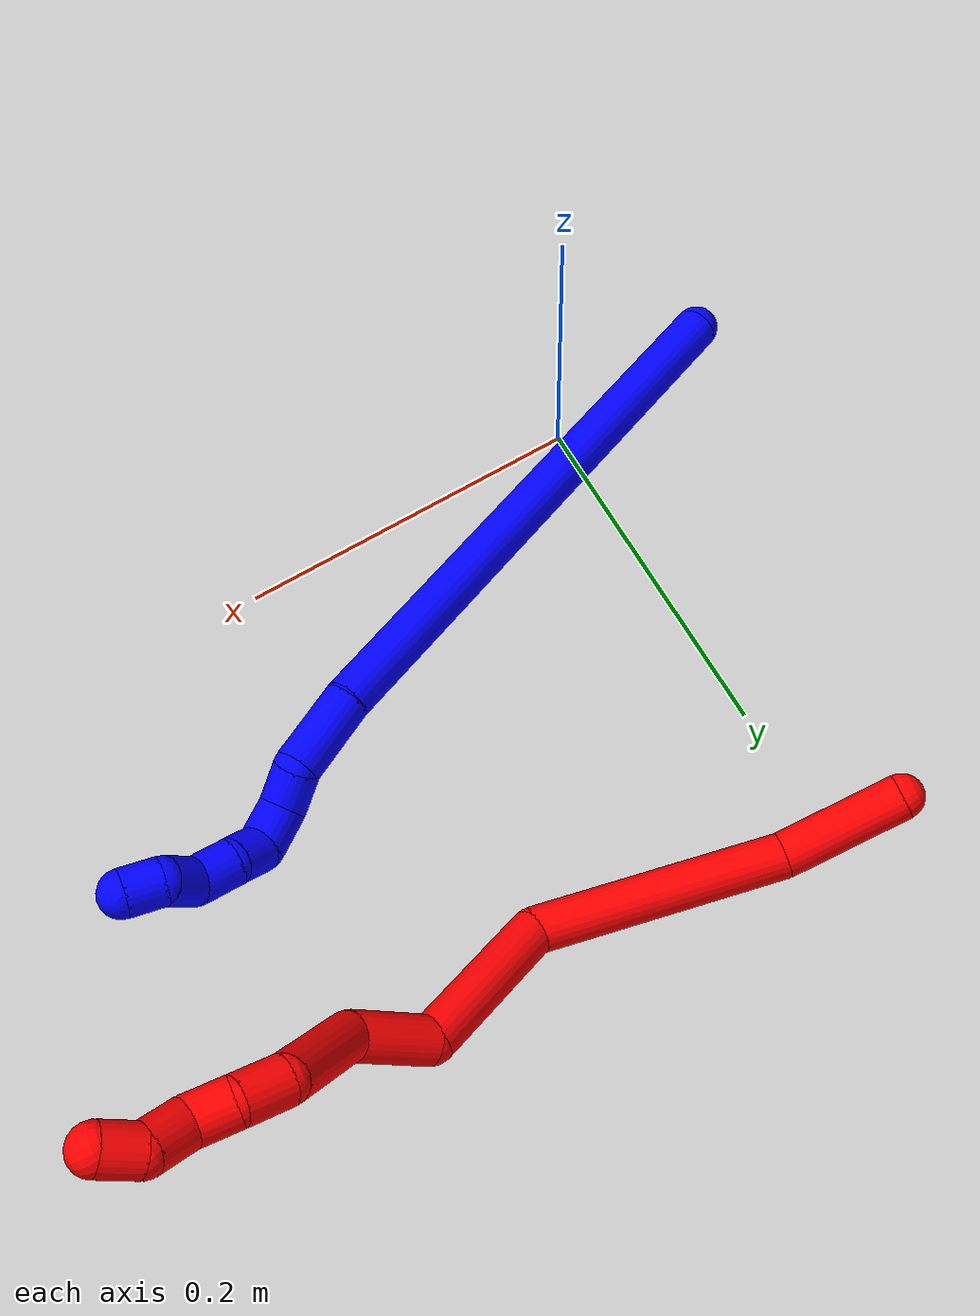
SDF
<sdf version="1.7">
 <world name="default">
  <plugin name="TubeGeneratorPlugin" filename="libtube_generator_plugin.so"/>
  <model name="photoneo_s_sensor">
   <static>1</static>
   <pose>0 0 2 1.57079 1.57079 3.14159</pose>
   <link name="link">
    <inertial><mass>0.1</mass></inertial>
    <sensor name="sensor" type="depth">
     <update_rate>30</update_rate>
     <camera>
      <horizontal_fov>1.22</horizontal_fov>
      <image><width>1920</width><height>1200</height><format>B8G8R8</format></image>
      <clip><near>0.1</near><far>4</far></clip>
      <depth_camera><output>points</output></depth_camera>
     </camera>
     <plugin name="camera_plugin" filename="libgazebo_ros_depth_camera.so">
      <baseline>0.2</baseline>
      <alwaysOn>1</alwaysOn>
      <updateRate>0.0</updateRate>
      <cameraName>camera_ir</cameraName>
      <imageTopicName>/camera/color/image_raw</imageTopicName>
      <cameraInfoTopicName>/camera/color/camera_info</cameraInfoTopicName>
      <depthImageTopicName>/camera/depth/image_raw</depthImageTopicName>
      <depthImageCameraInfoTopicName>/camera/depth/camera_info</depthImageCameraInfoTopicName>
      <pointCloudTopicName>/camera/depth/points</pointCloudTopicName>
      <frameName>fr_optical</frameName>
      <pointCloudCutoff>0.1</pointCloudCutoff>
      <pointCloudCutoffMax>2.0</pointCloudCutoffMax>
      <distortionK1>0</distortionK1>
      <distortionK2>0</distortionK2>
      <distortionK3>0</distortionK3>
      <distortionT1>0</distortionT1>
      <distortionT2>0</distortionT2>
      <CxPrime>0</CxPrime>
      <Cx>0</Cx>
      <Cy>0</Cy>
      <focalLength>0</focalLength>
      <hackBaseline>0</hackBaseline>
     </plugin>
    </sensor>
   </link>
  </model>
  <gravity>0 0 -9.8</gravity>
  <magnetic_field>6e-06 2.3e-05 -4.2e-05</magnetic_field>
  <atmosphere type="adiabatic"/>
  <physics name="default_physics" default="0" type="ode">
   <max_step_size>0.003</max_step_size>
   <real_time_factor>1</real_time_factor>
   <real_time_update_rate>1000</real_time_update_rate>
   <max_contacts>10000</max_contacts>
   <ode>
    <solver>
     <type>quick</type>
     <iters>100</iters>
     <sor>1.3</sor>
     <use_dynamic_moi_rescaling>0</use_dynamic_moi_rescaling>
    </solver>
    <constraints>
     <contact_max_correcting_vel>0</contact_max_correcting_vel>
     <contact_surface_layer>0.001</contact_surface_layer>
     <cfm>0</cfm>
     <erp>0.2</erp>
    </constraints>
   </ode>
  </physics>
  <scene><ambient>0.4 0.4 0.4 1</ambient><background>0.7 0.7 0.7 1</background><shadows>0</shadows></scene>
  <audio><device>default</device></audio>
  <spherical_coordinates>
   <surface_model>EARTH_WGS84</surface_model>
   <latitude_deg>0</latitude_deg>
   <longitude_deg>0</longitude_deg>
   <elevation>0</elevation>
   <heading_deg>0</heading_deg>
  </spherical_coordinates>
  <model name="bin">
   <static>1</static>
   <link name="bottom">
    <collision name="collision-bottom">
     <pose>0 0 -0.01 0 -0 0</pose>
     <geometry><box><size>0.8 0.6 0.02</size></box></geometry>
     <surface>
      <friction><ode><mu>100</mu><mu2>100</mu2></ode></friction>
      <contact><collide_bitmask>65535</collide_bitmask></contact>
     </surface>
    </collision>
   </link>
   <link name="west_wall">
    <collision name="collision-west_wall">
     <pose>-0.41 0 0.1 0 -0 0</pose>
     <geometry><box><size>0.02 0.6 0.2</size></box></geometry>
     <surface>
      <friction><ode><mu>100</mu><mu2>100</mu2></ode></friction>
      <contact><collide_bitmask>65535</collide_bitmask></contact>
     </surface>
    </collision>
   </link>
   <link name="east_wall">
    <collision name="collision-east_wall">
     <pose>0.41 0 0.1 0 -0 0</pose>
     <geometry><box><size>0.02 0.6 0.2</size></box></geometry>
     <surface>
      <friction><ode><mu>100</mu><mu2>100</mu2></ode></friction>
      <contact><collide_bitmask>65535</collide_bitmask></contact>
     </surface>
    </collision>
   </link>
   <link name="south_wall">
    <collision name="collision-south_wall">
     <pose>0 -0.31 0.1 0 -0 0</pose>
     <geometry><box><size>0.8 0.02 0.2</size></box></geometry>
     <surface>
      <friction><ode><mu>100</mu><mu2>100</mu2></ode></friction>
      <contact><collide_bitmask>65535</collide_bitmask></contact>
     </surface>
    </collision>
   </link>
   <link name="north_wall">
    <collision name="collision-north_wall">
     <pose>0 0.31 0.1 0 -0 0</pose>
     <geometry><box><size>0.8 0.02 0.2</size></box></geometry>
     <surface>
      <friction><ode><mu>100</mu><mu2>100</mu2></ode></friction>
      <contact><collide_bitmask>65535</collide_bitmask></contact>
     </surface>
    </collision>
   </link>
  </model>
  <model name="1">
   <static>0</static>
   <link name="1">
    <collision name="collision-cylinder-e_1_1_4">
     <pose>0.144509 -0.029871 0.067407 0.417136 1.09902 0.2578</pose>
     <geometry><cylinder><radius>0.0125</radius><length>0.324461</length></cylinder></geometry>
     <surface>
      <friction><ode><mu>1.16</mu><mu2>1.16</mu2><slip1>0</slip1><slip2>0</slip2></ode></friction>
      <contact><ode><kp>1e+06</kp><kd>1</kd><max_vel>0</max_vel><min_depth>0.001</min_depth></ode></contact>
     </surface>
    </collision>
    <visual name="visual-cylinder-e_1_1_4">
     <pose>0.144509 -0.029871 0.067407 0.417136 1.09902 0.2578</pose>
     <geometry><cylinder><radius>0.0125</radius><length>0.324461</length></cylinder></geometry>
     <material><ambient>0 0 1 1</ambient></material>
    </visual>
    <collision name="collision-cylinder-e_2_4_5">
     <pose>0.309557 -0.060952 0.143253 0.14251 1.17732 0.095231</pose>
     <geometry><cylinder><radius>0.0125</radius><length>0.044476</length></cylinder></geometry>
     <surface>
      <friction><ode><mu>1.16</mu><mu2>1.16</mu2><slip1>0</slip1><slip2>0</slip2></ode></friction>
      <contact><ode><kp>1e+06</kp><kd>1</kd><max_vel>0</max_vel><min_depth>0.001</min_depth></ode></contact>
     </surface>
    </collision>
    <visual name="visual-cylinder-e_2_4_5">
     <pose>0.309557 -0.060952 0.143253 0.14251 1.17732 0.095231</pose>
     <geometry><cylinder><radius>0.0125</radius><length>0.044476</length></cylinder></geometry>
     <material><ambient>0 0 1 1</ambient></material>
    </visual>
    <collision name="collision-cylinder-e_3_5_6">
     <pose>0.340567 -0.057662 0.151127 -1.69583 1.16195 -1.27963</pose>
     <geometry><cylinder><radius>0.0125</radius><length>0.022825</length></cylinder></geometry>
     <surface>
      <friction><ode><mu>1.16</mu><mu2>1.16</mu2><slip1>0</slip1><slip2>0</slip2></ode></friction>
      <contact><ode><kp>1e+06</kp><kd>1</kd><max_vel>0</max_vel><min_depth>0.001</min_depth></ode></contact>
     </surface>
    </collision>
    <visual name="visual-cylinder-e_3_5_6">
     <pose>0.340567 -0.057662 0.151127 -1.69583 1.16195 -1.27963</pose>
     <geometry><cylinder><radius>0.0125</radius><length>0.022825</length></cylinder></geometry>
     <material><ambient>0 0 1 1</ambient></material>
    </visual>
    <collision name="collision-cylinder-e_4_6_7">
     <pose>0.361455 -0.052858 0.156928 -0.047348 1.02163 -0.026539</pose>
     <geometry><cylinder><radius>0.0125</radius><length>0.024423</length></cylinder></geometry>
     <surface>
      <friction><ode><mu>1.16</mu><mu2>1.16</mu2><slip1>0</slip1><slip2>0</slip2></ode></friction>
      <contact><ode><kp>1e+06</kp><kd>1</kd><max_vel>0</max_vel><min_depth>0.001</min_depth></ode></contact>
     </surface>
    </collision>
    <visual name="visual-cylinder-e_4_6_7">
     <pose>0.361455 -0.052858 0.156928 -0.047348 1.02163 -0.026539</pose>
     <geometry><cylinder><radius>0.0125</radius><length>0.024423</length></cylinder></geometry>
     <material><ambient>0 0 1 1</ambient></material>
    </visual>
    <collision name="collision-cylinder-e_5_7_8">
     <pose>0.377578 -0.058144 0.169562 0.728151 0.596938 0.23341</pose>
     <geometry><cylinder><radius>0.0125</radius><length>0.020304</length></cylinder></geometry>
     <surface>
      <friction><ode><mu>1.16</mu><mu2>1.16</mu2><slip1>0</slip1><slip2>0</slip2></ode></friction>
      <contact><ode><kp>1e+06</kp><kd>1</kd><max_vel>0</max_vel><min_depth>0.001</min_depth></ode></contact>
     </surface>
    </collision>
    <visual name="visual-cylinder-e_5_7_8">
     <pose>0.377578 -0.058144 0.169562 0.728151 0.596938 0.23341</pose>
     <geometry><cylinder><radius>0.0125</radius><length>0.020304</length></cylinder></geometry>
     <material><ambient>0 0 1 1</ambient></material>
    </visual>
    <collision name="collision-cylinder-e_6_8_9">
     <pose>0.392157 -0.06921 0.179567 0.97196 0.928936 0.517456</pose>
     <geometry><cylinder><radius>0.0125</radius><length>0.022153</length></cylinder></geometry>
     <surface>
      <friction><ode><mu>1.16</mu><mu2>1.16</mu2><slip1>0</slip1><slip2>0</slip2></ode></friction>
      <contact><ode><kp>1e+06</kp><kd>1</kd><max_vel>0</max_vel><min_depth>0.001</min_depth></ode></contact>
     </surface>
    </collision>
    <visual name="visual-cylinder-e_6_8_9">
     <pose>0.392157 -0.06921 0.179567 0.97196 0.928936 0.517456</pose>
     <geometry><cylinder><radius>0.0125</radius><length>0.022153</length></cylinder></geometry>
     <material><ambient>0 0 1 1</ambient></material>
    </visual>
    <collision name="collision-cylinder-e_7_9_10">
     <pose>0.404 -0.083112 0.189039 0.973197 0.283712 0.150819</pose>
     <geometry><cylinder><radius>0.0125</radius><length>0.02123</length></cylinder></geometry>
     <surface>
      <friction><ode><mu>1.16</mu><mu2>1.16</mu2><slip1>0</slip1><slip2>0</slip2></ode></friction>
      <contact><ode><kp>1e+06</kp><kd>1</kd><max_vel>0</max_vel><min_depth>0.001</min_depth></ode></contact>
     </surface>
    </collision>
    <visual name="visual-cylinder-e_7_9_10">
     <pose>0.404 -0.083112 0.189039 0.973197 0.283712 0.150819</pose>
     <geometry><cylinder><radius>0.0125</radius><length>0.02123</length></cylinder></geometry>
     <material><ambient>0 0 1 1</ambient></material>
    </visual>
    <collision name="collision-cylinder-e_8_10_2">
     <pose>0.414931 -0.097599 0.195852 1.39471 0.91226 0.779982</pose>
     <geometry><cylinder><radius>0.0125</radius><length>0.020127</length></cylinder></geometry>
     <surface>
      <friction><ode><mu>1.16</mu><mu2>1.16</mu2><slip1>0</slip1><slip2>0</slip2></ode></friction>
      <contact><ode><kp>1e+06</kp><kd>1</kd><max_vel>0</max_vel><min_depth>0.001</min_depth></ode></contact>
     </surface>
    </collision>
    <visual name="visual-cylinder-e_8_10_2">
     <pose>0.414931 -0.097599 0.195852 1.39471 0.91226 0.779982</pose>
     <geometry><cylinder><radius>0.0125</radius><length>0.020127</length></cylinder></geometry>
     <material><ambient>0 0 1 1</ambient></material>
    </visual>
    <collision name="collision-sphere-2">
     <pose>0.42289 -0.103663 0.196931 0 -0 0</pose>
     <geometry><sphere><radius>0.0125</radius></sphere></geometry>
     <surface>
      <friction><ode><mu>1.16</mu><mu2>1.16</mu2><slip1>0</slip1><slip2>0</slip2></ode></friction>
      <contact><ode><kp>1e+06</kp><kd>1</kd><max_vel>0</max_vel><min_depth>0.001</min_depth></ode></contact>
     </surface>
    </collision>
    <visual name="visual-sphere-2">
     <pose>0.42289 -0.103663 0.196931 0 -0 0</pose>
     <geometry><sphere><radius>0.0125</radius></sphere></geometry>
     <material><ambient>0 0 1 1</ambient></material>
    </visual>
    <collision name="collision-sphere-10">
     <pose>0.406971 -0.091536 0.194773 0 -0 0</pose>
     <geometry><sphere><radius>0.0125</radius></sphere></geometry>
     <surface>
      <friction><ode><mu>1.16</mu><mu2>1.16</mu2><slip1>0</slip1><slip2>0</slip2></ode></friction>
      <contact><ode><kp>1e+06</kp><kd>1</kd><max_vel>0</max_vel><min_depth>0.001</min_depth></ode></contact>
     </surface>
    </collision>
    <visual name="visual-sphere-10">
     <pose>0.406971 -0.091536 0.194773 0 -0 0</pose>
     <geometry><sphere><radius>0.0125</radius></sphere></geometry>
     <material><ambient>0 0 1 1</ambient></material>
    </visual>
    <collision name="collision-sphere-9">
     <pose>0.401029 -0.074687 0.183305 0 -0 0</pose>
     <geometry><sphere><radius>0.0125</radius></sphere></geometry>
     <surface>
      <friction><ode><mu>1.16</mu><mu2>1.16</mu2><slip1>0</slip1><slip2>0</slip2></ode></friction>
      <contact><ode><kp>1e+06</kp><kd>1</kd><max_vel>0</max_vel><min_depth>0.001</min_depth></ode></contact>
     </surface>
    </collision>
    <visual name="visual-sphere-9">
     <pose>0.401029 -0.074687 0.183305 0 -0 0</pose>
     <geometry><sphere><radius>0.0125</radius></sphere></geometry>
     <material><ambient>0 0 1 1</ambient></material>
    </visual>
    <collision name="collision-sphere-4">
     <pose>0.289018 -0.059741 0.134813 0 -0 0</pose>
     <geometry><sphere><radius>0.0125</radius></sphere></geometry>
     <surface>
      <friction><ode><mu>1.16</mu><mu2>1.16</mu2><slip1>0</slip1><slip2>0</slip2></ode></friction>
      <contact><ode><kp>1e+06</kp><kd>1</kd><max_vel>0</max_vel><min_depth>0.001</min_depth></ode></contact>
     </surface>
    </collision>
    <visual name="visual-sphere-4">
     <pose>0.289018 -0.059741 0.134813 0 -0 0</pose>
     <geometry><sphere><radius>0.0125</radius></sphere></geometry>
     <material><ambient>0 0 1 1</ambient></material>
    </visual>
    <collision name="collision-sphere-1">
     <geometry><sphere><radius>0.0125</radius></sphere></geometry>
     <surface>
      <friction><ode><mu>1.16</mu><mu2>1.16</mu2><slip1>0</slip1><slip2>0</slip2></ode></friction>
      <contact><ode><kp>1e+06</kp><kd>1</kd><max_vel>0</max_vel><min_depth>0.001</min_depth></ode></contact>
     </surface>
    </collision>
    <visual name="visual-sphere-1">
     <geometry><sphere><radius>0.0125</radius></sphere></geometry>
     <material><ambient>0 0 1 1</ambient></material>
    </visual>
    <collision name="collision-sphere-8">
     <pose>0.383284 -0.063732 0.175829 0 -0 0</pose>
     <geometry><sphere><radius>0.0125</radius></sphere></geometry>
     <surface>
      <friction><ode><mu>1.16</mu><mu2>1.16</mu2><slip1>0</slip1><slip2>0</slip2></ode></friction>
      <contact><ode><kp>1e+06</kp><kd>1</kd><max_vel>0</max_vel><min_depth>0.001</min_depth></ode></contact>
     </surface>
    </collision>
    <visual name="visual-sphere-8">
     <pose>0.383284 -0.063732 0.175829 0 -0 0</pose>
     <geometry><sphere><radius>0.0125</radius></sphere></geometry>
     <material><ambient>0 0 1 1</ambient></material>
    </visual>
    <collision name="collision-sphere-5">
     <pose>0.330095 -0.062163 0.151693 0 -0 0</pose>
     <geometry><sphere><radius>0.0125</radius></sphere></geometry>
     <surface>
      <friction><ode><mu>1.16</mu><mu2>1.16</mu2><slip1>0</slip1><slip2>0</slip2></ode></friction>
      <contact><ode><kp>1e+06</kp><kd>1</kd><max_vel>0</max_vel><min_depth>0.001</min_depth></ode></contact>
     </surface>
    </collision>
    <visual name="visual-sphere-5">
     <pose>0.330095 -0.062163 0.151693 0 -0 0</pose>
     <geometry><sphere><radius>0.0125</radius></sphere></geometry>
     <material><ambient>0 0 1 1</ambient></material>
    </visual>
    <collision name="collision-sphere-6">
     <pose>0.351039 -0.05316 0.150561 0 -0 0</pose>
     <geometry><sphere><radius>0.0125</radius></sphere></geometry>
     <surface>
      <friction><ode><mu>1.16</mu><mu2>1.16</mu2><slip1>0</slip1><slip2>0</slip2></ode></friction>
      <contact><ode><kp>1e+06</kp><kd>1</kd><max_vel>0</max_vel><min_depth>0.001</min_depth></ode></contact>
     </surface>
    </collision>
    <visual name="visual-sphere-6">
     <pose>0.351039 -0.05316 0.150561 0 -0 0</pose>
     <geometry><sphere><radius>0.0125</radius></sphere></geometry>
     <material><ambient>0 0 1 1</ambient></material>
    </visual>
    <collision name="collision-sphere-7">
     <pose>0.371871 -0.052557 0.163295 0 -0 0</pose>
     <geometry><sphere><radius>0.0125</radius></sphere></geometry>
     <surface>
      <friction><ode><mu>1.16</mu><mu2>1.16</mu2><slip1>0</slip1><slip2>0</slip2></ode></friction>
      <contact><ode><kp>1e+06</kp><kd>1</kd><max_vel>0</max_vel><min_depth>0.001</min_depth></ode></contact>
     </surface>
    </collision>
    <visual name="visual-sphere-7">
     <pose>0.371871 -0.052557 0.163295 0 -0 0</pose>
     <geometry><sphere><radius>0.0125</radius></sphere></geometry>
     <material><ambient>0 0 1 1</ambient></material>
    </visual>
    <inertial>
     <pose>0.221078 -0.042905 0.101801 0 -0 0</pose>
     <mass>0.5</mass>
     <inertia>
      <ixx>0.001631</ixx>
      <ixy>0</ixy>
      <ixz>0</ixz>
      <iyy>0.003133</iyy>
      <iyz>0</iyz>
      <izz>-0.002017</izz>
     </inertia>
    </inertial>
   </link>
   <pose>-0.105502 -0.016461 0.011601 -0.67563 0.287846 0.268022</pose>
  </model>
  <model name="2">
   <static>0</static>
   <link name="2">
    <collision name="collision-cylinder-e_1_1_4">
     <pose>-0.000405 0.000274 0.034997 -0.007835 -0.011559 4.5e-05</pose>
     <geometry><cylinder><radius>0.0125</radius><length>0.070002</length></cylinder></geometry>
     <surface>
      <friction><ode><mu>1.16</mu><mu2>1.16</mu2><slip1>0</slip1><slip2>0</slip2></ode></friction>
      <contact><ode><kp>1e+06</kp><kd>1</kd><max_vel>0</max_vel><min_depth>0.001</min_depth></ode></contact>
     </surface>
    </collision>
    <visual name="visual-cylinder-e_1_1_4">
     <pose>-0.000405 0.000274 0.034997 -0.007835 -0.011559 4.5e-05</pose>
     <geometry><cylinder><radius>0.0125</radius><length>0.070002</length></cylinder></geometry>
     <material><ambient>1 0 0 1</ambient></material>
    </visual>
    <collision name="collision-cylinder-e_2_4_5">
     <pose>0.022678 0.001246 0.13588 -0.010585 0.342426 -0.00183</pose>
     <geometry><cylinder><radius>0.0125</radius><length>0.139899</length></cylinder></geometry>
     <surface>
      <friction><ode><mu>1.16</mu><mu2>1.16</mu2><slip1>0</slip1><slip2>0</slip2></ode></friction>
      <contact><ode><kp>1e+06</kp><kd>1</kd><max_vel>0</max_vel><min_depth>0.001</min_depth></ode></contact>
     </surface>
    </collision>
    <visual name="visual-cylinder-e_2_4_5">
     <pose>0.022678 0.001246 0.13588 -0.010585 0.342426 -0.00183</pose>
     <geometry><cylinder><radius>0.0125</radius><length>0.139899</length></cylinder></geometry>
     <material><ambient>1 0 0 1</ambient></material>
    </visual>
    <collision name="collision-cylinder-e_3_5_6">
     <pose>0.065872 -0.022824 0.232105 0.684621 0.466175 0.16879</pose>
     <geometry><cylinder><radius>0.0125</radius><length>0.087688</length></cylinder></geometry>
     <surface>
      <friction><ode><mu>1.16</mu><mu2>1.16</mu2><slip1>0</slip1><slip2>0</slip2></ode></friction>
      <contact><ode><kp>1e+06</kp><kd>1</kd><max_vel>0</max_vel><min_depth>0.001</min_depth></ode></contact>
     </surface>
    </collision>
    <visual name="visual-cylinder-e_3_5_6">
     <pose>0.065872 -0.022824 0.232105 0.684621 0.466175 0.16879</pose>
     <geometry><cylinder><radius>0.0125</radius><length>0.087688</length></cylinder></geometry>
     <material><ambient>1 0 0 1</ambient></material>
    </visual>
    <collision name="collision-cylinder-e_4_6_7">
     <pose>0.102959 -0.045544 0.276659 -0.143058 0.880229 -0.067458</pose>
     <geometry><cylinder><radius>0.0125</radius><length>0.045093</length></cylinder></geometry>
     <surface>
      <friction><ode><mu>1.16</mu><mu2>1.16</mu2><slip1>0</slip1><slip2>0</slip2></ode></friction>
      <contact><ode><kp>1e+06</kp><kd>1</kd><max_vel>0</max_vel><min_depth>0.001</min_depth></ode></contact>
     </surface>
    </collision>
    <visual name="visual-cylinder-e_4_6_7">
     <pose>0.102959 -0.045544 0.276659 -0.143058 0.880229 -0.067458</pose>
     <geometry><cylinder><radius>0.0125</radius><length>0.045093</length></cylinder></geometry>
     <material><ambient>1 0 0 1</ambient></material>
    </visual>
    <collision name="collision-cylinder-e_5_7_8">
     <pose>0.145909 -0.05962 0.30028 1.04273 0.940179 0.567887</pose>
     <geometry><cylinder><radius>0.0125</radius><length>0.063314</length></cylinder></geometry>
     <surface>
      <friction><ode><mu>1.16</mu><mu2>1.16</mu2><slip1>0</slip1><slip2>0</slip2></ode></friction>
      <contact><ode><kp>1e+06</kp><kd>1</kd><max_vel>0</max_vel><min_depth>0.001</min_depth></ode></contact>
     </surface>
    </collision>
    <visual name="visual-cylinder-e_5_7_8">
     <pose>0.145909 -0.05962 0.30028 1.04273 0.940179 0.567887</pose>
     <geometry><cylinder><radius>0.0125</radius><length>0.063314</length></cylinder></geometry>
     <material><ambient>1 0 0 1</ambient></material>
    </visual>
    <collision name="collision-cylinder-e_6_8_9">
     <pose>0.178655 -0.078821 0.319447 0.305331 0.61157 0.097068</pose>
     <geometry><cylinder><radius>0.0125</radius><length>0.025004</length></cylinder></geometry>
     <surface>
      <friction><ode><mu>1.16</mu><mu2>1.16</mu2><slip1>0</slip1><slip2>0</slip2></ode></friction>
      <contact><ode><kp>1e+06</kp><kd>1</kd><max_vel>0</max_vel><min_depth>0.001</min_depth></ode></contact>
     </surface>
    </collision>
    <visual name="visual-cylinder-e_6_8_9">
     <pose>0.178655 -0.078821 0.319447 0.305331 0.61157 0.097068</pose>
     <geometry><cylinder><radius>0.0125</radius><length>0.025004</length></cylinder></geometry>
     <material><ambient>1 0 0 1</ambient></material>
    </visual>
    <collision name="collision-cylinder-e_7_9_10">
     <pose>0.18937 -0.082993 0.339895 0.102088 0.318111 0.01639</pose>
     <geometry><cylinder><radius>0.0125</radius><length>0.022618</length></cylinder></geometry>
     <surface>
      <friction><ode><mu>1.16</mu><mu2>1.16</mu2><slip1>0</slip1><slip2>0</slip2></ode></friction>
      <contact><ode><kp>1e+06</kp><kd>1</kd><max_vel>0</max_vel><min_depth>0.001</min_depth></ode></contact>
     </surface>
    </collision>
    <visual name="visual-cylinder-e_7_9_10">
     <pose>0.18937 -0.082993 0.339895 0.102088 0.318111 0.01639</pose>
     <geometry><cylinder><radius>0.0125</radius><length>0.022618</length></cylinder></geometry>
     <material><ambient>1 0 0 1</ambient></material>
    </visual>
    <collision name="collision-cylinder-e_8_10_11">
     <pose>0.201413 -0.089821 0.35805 0.654747 0.734657 0.259873</pose>
     <geometry><cylinder><radius>0.0125</radius><length>0.025378</length></cylinder></geometry>
     <surface>
      <friction><ode><mu>1.16</mu><mu2>1.16</mu2><slip1>0</slip1><slip2>0</slip2></ode></friction>
      <contact><ode><kp>1e+06</kp><kd>1</kd><max_vel>0</max_vel><min_depth>0.001</min_depth></ode></contact>
     </surface>
    </collision>
    <visual name="visual-cylinder-e_8_10_11">
     <pose>0.201413 -0.089821 0.35805 0.654747 0.734657 0.259873</pose>
     <geometry><cylinder><radius>0.0125</radius><length>0.025378</length></cylinder></geometry>
     <material><ambient>1 0 0 1</ambient></material>
    </visual>
    <collision name="collision-cylinder-e_9_11_2">
     <pose>0.217215 -0.093856 0.372878 -0.226935 0.768084 -0.092037</pose>
     <geometry><cylinder><radius>0.0125</radius><length>0.021004</length></cylinder></geometry>
     <surface>
      <friction><ode><mu>1.16</mu><mu2>1.16</mu2><slip1>0</slip1><slip2>0</slip2></ode></friction>
      <contact><ode><kp>1e+06</kp><kd>1</kd><max_vel>0</max_vel><min_depth>0.001</min_depth></ode></contact>
     </surface>
    </collision>
    <visual name="visual-cylinder-e_9_11_2">
     <pose>0.217215 -0.093856 0.372878 -0.226935 0.768084 -0.092037</pose>
     <geometry><cylinder><radius>0.0125</radius><length>0.021004</length></cylinder></geometry>
     <material><ambient>1 0 0 1</ambient></material>
    </visual>
    <collision name="collision-sphere-2">
     <pose>0.224512 -0.092156 0.380238 0 -0 0</pose>
     <geometry><sphere><radius>0.0125</radius></sphere></geometry>
     <surface>
      <friction><ode><mu>1.16</mu><mu2>1.16</mu2><slip1>0</slip1><slip2>0</slip2></ode></friction>
      <contact><ode><kp>1e+06</kp><kd>1</kd><max_vel>0</max_vel><min_depth>0.001</min_depth></ode></contact>
     </surface>
    </collision>
    <visual name="visual-sphere-2">
     <pose>0.224512 -0.092156 0.380238 0 -0 0</pose>
     <geometry><sphere><radius>0.0125</radius></sphere></geometry>
     <material><ambient>1 0 0 1</ambient></material>
    </visual>
    <collision name="collision-sphere-11">
     <pose>0.209919 -0.095555 0.365519 0 -0 0</pose>
     <geometry><sphere><radius>0.0125</radius></sphere></geometry>
     <surface>
      <friction><ode><mu>1.16</mu><mu2>1.16</mu2><slip1>0</slip1><slip2>0</slip2></ode></friction>
      <contact><ode><kp>1e+06</kp><kd>1</kd><max_vel>0</max_vel><min_depth>0.001</min_depth></ode></contact>
     </surface>
    </collision>
    <visual name="visual-sphere-11">
     <pose>0.209919 -0.095555 0.365519 0 -0 0</pose>
     <geometry><sphere><radius>0.0125</radius></sphere></geometry>
     <material><ambient>1 0 0 1</ambient></material>
    </visual>
    <collision name="collision-sphere-10">
     <pose>0.192907 -0.084087 0.350581 0 -0 0</pose>
     <geometry><sphere><radius>0.0125</radius></sphere></geometry>
     <surface>
      <friction><ode><mu>1.16</mu><mu2>1.16</mu2><slip1>0</slip1><slip2>0</slip2></ode></friction>
      <contact><ode><kp>1e+06</kp><kd>1</kd><max_vel>0</max_vel><min_depth>0.001</min_depth></ode></contact>
     </surface>
    </collision>
    <visual name="visual-sphere-10">
     <pose>0.192907 -0.084087 0.350581 0 -0 0</pose>
     <geometry><sphere><radius>0.0125</radius></sphere></geometry>
     <material><ambient>1 0 0 1</ambient></material>
    </visual>
    <collision name="collision-sphere-9">
     <pose>0.185833 -0.081898 0.32921 0 -0 0</pose>
     <geometry><sphere><radius>0.0125</radius></sphere></geometry>
     <surface>
      <friction><ode><mu>1.16</mu><mu2>1.16</mu2><slip1>0</slip1><slip2>0</slip2></ode></friction>
      <contact><ode><kp>1e+06</kp><kd>1</kd><max_vel>0</max_vel><min_depth>0.001</min_depth></ode></contact>
     </surface>
    </collision>
    <visual name="visual-sphere-9">
     <pose>0.185833 -0.081898 0.32921 0 -0 0</pose>
     <geometry><sphere><radius>0.0125</radius></sphere></geometry>
     <material><ambient>1 0 0 1</ambient></material>
    </visual>
    <collision name="collision-sphere-4">
     <pose>-0.000809 0.000548 0.069995 0 -0 0</pose>
     <geometry><sphere><radius>0.0125</radius></sphere></geometry>
     <surface>
      <friction><ode><mu>1.16</mu><mu2>1.16</mu2><slip1>0</slip1><slip2>0</slip2></ode></friction>
      <contact><ode><kp>1e+06</kp><kd>1</kd><max_vel>0</max_vel><min_depth>0.001</min_depth></ode></contact>
     </surface>
    </collision>
    <visual name="visual-sphere-4">
     <pose>-0.000809 0.000548 0.069995 0 -0 0</pose>
     <geometry><sphere><radius>0.0125</radius></sphere></geometry>
     <material><ambient>1 0 0 1</ambient></material>
    </visual>
    <collision name="collision-sphere-1">
     <geometry><sphere><radius>0.0125</radius></sphere></geometry>
     <surface>
      <friction><ode><mu>1.16</mu><mu2>1.16</mu2><slip1>0</slip1><slip2>0</slip2></ode></friction>
      <contact><ode><kp>1e+06</kp><kd>1</kd><max_vel>0</max_vel><min_depth>0.001</min_depth></ode></contact>
     </surface>
    </collision>
    <visual name="visual-sphere-1">
     <geometry><sphere><radius>0.0125</radius></sphere></geometry>
     <material><ambient>1 0 0 1</ambient></material>
    </visual>
    <collision name="collision-sphere-8">
     <pose>0.171477 -0.075744 0.309685 0 -0 0</pose>
     <geometry><sphere><radius>0.0125</radius></sphere></geometry>
     <surface>
      <friction><ode><mu>1.16</mu><mu2>1.16</mu2><slip1>0</slip1><slip2>0</slip2></ode></friction>
      <contact><ode><kp>1e+06</kp><kd>1</kd><max_vel>0</max_vel><min_depth>0.001</min_depth></ode></contact>
     </surface>
    </collision>
    <visual name="visual-sphere-8">
     <pose>0.171477 -0.075744 0.309685 0 -0 0</pose>
     <geometry><sphere><radius>0.0125</radius></sphere></geometry>
     <material><ambient>1 0 0 1</ambient></material>
    </visual>
    <collision name="collision-sphere-5">
     <pose>0.046165 0.001943 0.201765 0 -0 0</pose>
     <geometry><sphere><radius>0.0125</radius></sphere></geometry>
     <surface>
      <friction><ode><mu>1.16</mu><mu2>1.16</mu2><slip1>0</slip1><slip2>0</slip2></ode></friction>
      <contact><ode><kp>1e+06</kp><kd>1</kd><max_vel>0</max_vel><min_depth>0.001</min_depth></ode></contact>
     </surface>
    </collision>
    <visual name="visual-sphere-5">
     <pose>0.046165 0.001943 0.201765 0 -0 0</pose>
     <geometry><sphere><radius>0.0125</radius></sphere></geometry>
     <material><ambient>1 0 0 1</ambient></material>
    </visual>
    <collision name="collision-sphere-6">
     <pose>0.085579 -0.047592 0.262444 0 -0 0</pose>
     <geometry><sphere><radius>0.0125</radius></sphere></geometry>
     <surface>
      <friction><ode><mu>1.16</mu><mu2>1.16</mu2><slip1>0</slip1><slip2>0</slip2></ode></friction>
      <contact><ode><kp>1e+06</kp><kd>1</kd><max_vel>0</max_vel><min_depth>0.001</min_depth></ode></contact>
     </surface>
    </collision>
    <visual name="visual-sphere-6">
     <pose>0.085579 -0.047592 0.262444 0 -0 0</pose>
     <geometry><sphere><radius>0.0125</radius></sphere></geometry>
     <material><ambient>1 0 0 1</ambient></material>
    </visual>
    <collision name="collision-sphere-7">
     <pose>0.12034 -0.043496 0.290874 0 -0 0</pose>
     <geometry><sphere><radius>0.0125</radius></sphere></geometry>
     <surface>
      <friction><ode><mu>1.16</mu><mu2>1.16</mu2><slip1>0</slip1><slip2>0</slip2></ode></friction>
      <contact><ode><kp>1e+06</kp><kd>1</kd><max_vel>0</max_vel><min_depth>0.001</min_depth></ode></contact>
     </surface>
    </collision>
    <visual name="visual-sphere-7">
     <pose>0.12034 -0.043496 0.290874 0 -0 0</pose>
     <geometry><sphere><radius>0.0125</radius></sphere></geometry>
     <material><ambient>1 0 0 1</ambient></material>
    </visual>
    <inertial>
     <pose>0.082451 -0.03147 0.211786 0 -0 0</pose>
     <mass>0.5</mass>
     <inertia>
      <ixx>0.000362</ixx>
      <ixy>0</ixy>
      <ixz>0</ixz>
      <iyy>0.000358</iyy>
      <iyz>0</iyz>
      <izz>-6.2e-05</izz>
     </inertia>
    </inertial>
   </link>
   <pose>-0.038449 0.28761 0.028932 -2.28532 -1.20453 -1.00545</pose>
  </model>
 </world>
</sdf>
